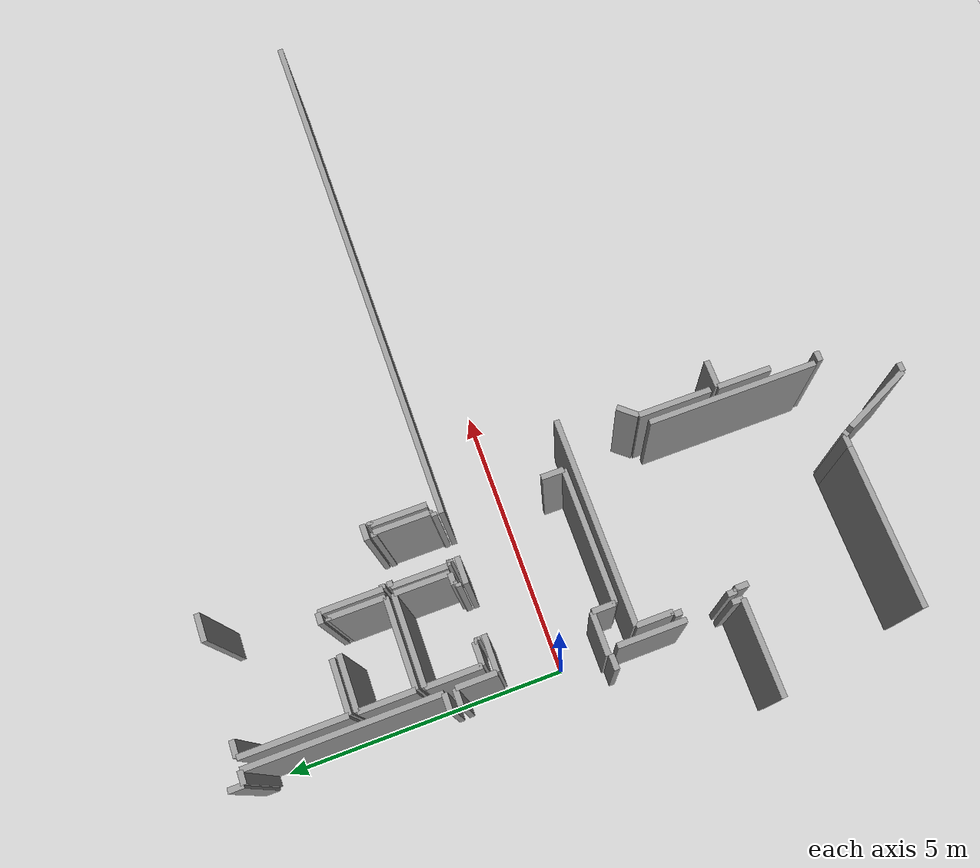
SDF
<sdf version="1.6">
 <world name="default">
  <model name="ground_plane">
   <static>1</static>
   <link name="link">
    <collision name="collision">
     <geometry><plane><normal>0 0 1</normal><size>100 100</size></plane></geometry>
     <surface><friction><ode><mu>100</mu><mu2>50</mu2></ode></friction></surface>
    </collision>
    <visual name="visual">
     <cast_shadows>0</cast_shadows>
     <geometry><plane><normal>0 0 1</normal><size>100 100</size></plane></geometry>
     <material>
      <script><uri>file://media/materials/scripts/gazebo.material</uri><name>Gazebo/Grey</name></script>
     </material>
    </visual>
   </link>
  </model>
  <model name="0510025537_Layout1_PLAN1">
   <static>1</static>
   <link name="Wall_192">
    <collision name="Wall_192_Collision">
     <geometry><box><size>0.258854927877 0.1 2.5</size></box></geometry>
     <pose>0.129427463938 0 1.25 0 0 0</pose>
    </collision>
    <visual name="Wall_192_Visual">
     <pose>0.129427463938 0 1.25 0 0 0</pose>
     <geometry><box><size>0.258854927877 0.1 2.5</size></box></geometry>
     <material>
      <script><uri>file://media/materials/scripts/gazebo.material</uri><name>Gazebo/Grey</name></script>
      <ambient>1 1 1 1</ambient>
     </material>
    </visual>
    <pose>20.1955900108 -0.0 0 0 0 -1.57079632679</pose>
   </link>
   <link name="Wall_193">
    <collision name="Wall_193_Collision">
     <geometry><box><size>0.231619749635 0.1 2.5</size></box></geometry>
     <pose>0.115809874817 0 1.25 0 0 0</pose>
    </collision>
    <visual name="Wall_193_Visual">
     <pose>0.115809874817 0 1.25 0 0 0</pose>
     <geometry><box><size>0.231619749635 0.1 2.5</size></box></geometry>
     <material>
      <script><uri>file://media/materials/scripts/gazebo.material</uri><name>Gazebo/Grey</name></script>
      <ambient>1 1 1 1</ambient>
     </material>
    </visual>
    <pose>20.1955900108 -0.258854927877 0 0 0 0.0</pose>
   </link>
   <link name="Wall_194">
    <collision name="Wall_194_Collision">
     <geometry><box><size>3.3144945034 0.1 2.5</size></box></geometry>
     <pose>1.6572472517 0 1.25 0 0 0</pose>
    </collision>
    <visual name="Wall_194_Visual">
     <pose>1.6572472517 0 1.25 0 0 0</pose>
     <geometry><box><size>3.3144945034 0.1 2.5</size></box></geometry>
     <material>
      <script><uri>file://media/materials/scripts/gazebo.material</uri><name>Gazebo/Grey</name></script>
      <ambient>1 1 1 1</ambient>
     </material>
    </visual>
    <pose>20.4272097604 -0.258854927877 0 0 0 -1.57079632679</pose>
   </link>
   <link name="Wall_195">
    <collision name="Wall_195_Collision">
     <geometry><box><size>0.285187774036 0.1 2.5</size></box></geometry>
     <pose>0.142593887018 0 1.25 0 0 0</pose>
    </collision>
    <visual name="Wall_195_Visual">
     <pose>0.142593887018 0 1.25 0 0 0</pose>
     <geometry><box><size>0.285187774036 0.1 2.5</size></box></geometry>
     <material>
      <script><uri>file://media/materials/scripts/gazebo.material</uri><name>Gazebo/Grey</name></script>
      <ambient>1 1 1 1</ambient>
     </material>
    </visual>
    <pose>20.4272097604 -3.57334943128 0 0 0 3.14159265359</pose>
   </link>
   <link name="Wall_202">
    <collision name="Wall_202_Collision">
     <geometry><box><size>1.19749634619 0.1 2.5</size></box></geometry>
     <pose>0.598748173095 0 1.25 0 0 0</pose>
    </collision>
    <visual name="Wall_202_Visual">
     <pose>0.598748173095 0 1.25 0 0 0</pose>
     <geometry><box><size>1.19749634619 0.1 2.5</size></box></geometry>
     <material>
      <script><uri>file://media/materials/scripts/gazebo.material</uri><name>Gazebo/Grey</name></script>
      <ambient>1 1 1 1</ambient>
     </material>
    </visual>
    <pose>20.157336214 -6.38023765648 0 0 0 -1.57079632679</pose>
   </link>
   <link name="Wall_203">
    <collision name="Wall_203_Collision">
     <geometry><box><size>0.195081654699 0.1 2.5</size></box></geometry>
     <pose>0.0975408273496 0 1.25 0 0 0</pose>
    </collision>
    <visual name="Wall_203_Visual">
     <pose>0.0975408273496 0 1.25 0 0 0</pose>
     <geometry><box><size>0.195081654699 0.1 2.5</size></box></geometry>
     <material>
      <script><uri>file://media/materials/scripts/gazebo.material</uri><name>Gazebo/Grey</name></script>
      <ambient>1 1 1 1</ambient>
     </material>
    </visual>
    <pose>20.157336214 -8.35621783059 0 0 0 -1.57079632679</pose>
   </link>
   <link name="Wall_204">
    <collision name="Wall_204_Collision">
     <geometry><box><size>1.66505853231 0.1 2.5</size></box></geometry>
     <pose>0.832529266155 0 1.25 0 0 0</pose>
    </collision>
    <visual name="Wall_204_Visual">
     <pose>0.832529266155 0 1.25 0 0 0</pose>
     <geometry><box><size>1.66505853231 0.1 2.5</size></box></geometry>
     <material>
      <script><uri>file://media/materials/scripts/gazebo.material</uri><name>Gazebo/Grey</name></script>
      <ambient>1 1 1 1</ambient>
     </material>
    </visual>
    <pose>20.157336214 -8.55129948529 0 0 0 3.14018060247</pose>
   </link>
   <link name="Wall_207">
    <collision name="Wall_207_Collision">
     <geometry><box><size>0.222659973311 0.1 2.5</size></box></geometry>
     <pose>0.111329986656 0 1.25 0 0 0</pose>
    </collision>
    <visual name="Wall_207_Visual">
     <pose>0.111329986656 0 1.25 0 0 0</pose>
     <geometry><box><size>0.222659973311 0.1 2.5</size></box></geometry>
     <material>
      <script><uri>file://media/materials/scripts/gazebo.material</uri><name>Gazebo/Grey</name></script>
      <ambient>1 1 1 1</ambient>
     </material>
    </visual>
    <pose>20.3473343077 -8.72121751287 0 0 0 1.57079632679</pose>
   </link>
   <link name="Wall_208">
    <collision name="Wall_208_Collision">
     <geometry><box><size>0.0439728029485 0.1 2.5</size></box></geometry>
     <pose>0.0219864014742 0 1.25 0 0 0</pose>
    </collision>
    <visual name="Wall_208_Visual">
     <pose>0.0219864014742 0 1.25 0 0 0</pose>
     <geometry><box><size>0.0439728029485 0.1 2.5</size></box></geometry>
     <material>
      <script><uri>file://media/materials/scripts/gazebo.material</uri><name>Gazebo/Grey</name></script>
      <ambient>1 1 1 1</ambient>
     </material>
    </visual>
    <pose>20.3473343077 -8.49855753956 0 0 0 3.14159265359</pose>
   </link>
   <link name="Wall_209">
    <collision name="Wall_209_Collision">
     <geometry><box><size>0.158607104277 0.1 2.5</size></box></geometry>
     <pose>0.0793035521383 0 1.25 0 0 0</pose>
    </collision>
    <visual name="Wall_209_Visual">
     <pose>0.0793035521383 0 1.25 0 0 0</pose>
     <geometry><box><size>0.158607104277 0.1 2.5</size></box></geometry>
     <material>
      <script><uri>file://media/materials/scripts/gazebo.material</uri><name>Gazebo/Grey</name></script>
      <ambient>1 1 1 1</ambient>
     </material>
    </visual>
    <pose>20.3033615047 -8.49855753956 0 0 0 1.57079632679</pose>
   </link>
   <link name="Wall_210">
    <collision name="Wall_210_Collision">
     <geometry><box><size>0.131092330177 0.1 2.5</size></box></geometry>
     <pose>0.0655461650886 0 1.25 0 0 0</pose>
    </collision>
    <visual name="Wall_210_Visual">
     <pose>0.0655461650886 0 1.25 0 0 0</pose>
     <geometry><box><size>0.131092330177 0.1 2.5</size></box></geometry>
     <material>
      <script><uri>file://media/materials/scripts/gazebo.material</uri><name>Gazebo/Grey</name></script>
      <ambient>1 1 1 1</ambient>
     </material>
    </visual>
    <pose>20.3033615047 -7.54901188282 0 0 0 1.57079632679</pose>
   </link>
   <link name="Wall_211">
    <collision name="Wall_211_Collision">
     <geometry><box><size>0.0479125627502 0.1 2.5</size></box></geometry>
     <pose>0.0239562813751 0 1.25 0 0 0</pose>
    </collision>
    <visual name="Wall_211_Visual">
     <pose>0.0239562813751 0 1.25 0 0 0</pose>
     <geometry><box><size>0.0479125627502 0.1 2.5</size></box></geometry>
     <material>
      <script><uri>file://media/materials/scripts/gazebo.material</uri><name>Gazebo/Grey</name></script>
      <ambient>1 1 1 1</ambient>
     </material>
    </visual>
    <pose>20.3033615047 -7.41791955265 0 0 0 0.0</pose>
   </link>
   <link name="Wall_212">
    <collision name="Wall_212_Collision">
     <geometry><box><size>0.638749443986 0.1 2.5</size></box></geometry>
     <pose>0.319374721993 0 1.25 0 0 0</pose>
    </collision>
    <visual name="Wall_212_Visual">
     <pose>0.319374721993 0 1.25 0 0 0</pose>
     <geometry><box><size>0.638749443986 0.1 2.5</size></box></geometry>
     <material>
      <script><uri>file://media/materials/scripts/gazebo.material</uri><name>Gazebo/Grey</name></script>
      <ambient>1 1 1 1</ambient>
     </material>
    </visual>
    <pose>20.3512740675 -7.41791955265 0 0 0 1.57079632679</pose>
   </link>
   <link name="Wall_213">
    <collision name="Wall_213_Collision">
     <geometry><box><size>3.66931435471 0.1 2.5</size></box></geometry>
     <pose>1.83465717735 0 1.25 0 0 0</pose>
    </collision>
    <visual name="Wall_213_Visual">
     <pose>1.83465717735 0 1.25 0 0 0</pose>
     <geometry><box><size>3.66931435471 0.1 2.5</size></box></geometry>
     <material>
      <script><uri>file://media/materials/scripts/gazebo.material</uri><name>Gazebo/Grey</name></script>
      <ambient>1 1 1 1</ambient>
     </material>
    </visual>
    <pose>20.3512740675 -6.77917010866 0 0 0 0.0</pose>
   </link>
   <link name="Wall_215">
    <collision name="Wall_215_Collision">
     <geometry><box><size>3.05522018174 0.1 2.5</size></box></geometry>
     <pose>1.52761009087 0 1.25 0 0 0</pose>
    </collision>
    <visual name="Wall_215_Visual">
     <pose>1.52761009087 0 1.25 0 0 0</pose>
     <geometry><box><size>3.05522018174 0.1 2.5</size></box></geometry>
     <material>
      <script><uri>file://media/materials/scripts/gazebo.material</uri><name>Gazebo/Grey</name></script>
      <ambient>1 1 1 1</ambient>
     </material>
    </visual>
    <pose>23.4401092966 -8.237834403 0 0 0 -1.57079632679</pose>
   </link>
   <link name="Wall_216">
    <collision name="Wall_216_Collision">
     <geometry><box><size>0.0823701861256 0.1 2.5</size></box></geometry>
     <pose>0.0411850930628 0 1.25 0 0 0</pose>
    </collision>
    <visual name="Wall_216_Visual">
     <pose>0.0411850930628 0 1.25 0 0 0</pose>
     <geometry><box><size>0.0823701861256 0.1 2.5</size></box></geometry>
     <material>
      <script><uri>file://media/materials/scripts/gazebo.material</uri><name>Gazebo/Grey</name></script>
      <ambient>1 1 1 1</ambient>
     </material>
    </visual>
    <pose>22.125373324 -11.2930545847 0 0 0 2.06687991512</pose>
   </link>
   <link name="Wall_217">
    <collision name="Wall_217_Collision">
     <geometry><box><size>0.219927559255 0.1 2.5</size></box></geometry>
     <pose>0.109963779628 0 1.25 0 0 0</pose>
    </collision>
    <visual name="Wall_217_Visual">
     <pose>0.109963779628 0 1.25 0 0 0</pose>
     <geometry><box><size>0.219927559255 0.1 2.5</size></box></geometry>
     <material>
      <script><uri>file://media/materials/scripts/gazebo.material</uri><name>Gazebo/Grey</name></script>
      <ambient>1 1 1 1</ambient>
     </material>
    </visual>
    <pose>22.0861663595 -11.22061384 0 0 0 3.14159265359</pose>
   </link>
   <link name="Wall_218">
    <collision name="Wall_218_Collision">
     <geometry><box><size>2.86853670749 0.1 2.5</size></box></geometry>
     <pose>1.43426835374 0 1.25 0 0 0</pose>
    </collision>
    <visual name="Wall_218_Visual">
     <pose>1.43426835374 0 1.25 0 0 0</pose>
     <geometry><box><size>2.86853670749 0.1 2.5</size></box></geometry>
     <material>
      <script><uri>file://media/materials/scripts/gazebo.material</uri><name>Gazebo/Grey</name></script>
      <ambient>1 1 1 1</ambient>
     </material>
    </visual>
    <pose>21.8662388003 -11.22061384 0 0 0 -3.13891222937</pose>
   </link>
   <link name="Wall_219">
    <collision name="Wall_219_Collision">
     <geometry><box><size>1.31174938044 0.1 2.5</size></box></geometry>
     <pose>0.655874690221 0 1.25 0 0 0</pose>
    </collision>
    <visual name="Wall_219_Visual">
     <pose>0.655874690221 0 1.25 0 0 0</pose>
     <geometry><box><size>1.31174938044 0.1 2.5</size></box></geometry>
     <material>
      <script><uri>file://media/materials/scripts/gazebo.material</uri><name>Gazebo/Grey</name></script>
      <ambient>1 1 1 1</ambient>
     </material>
    </visual>
    <pose>23.6207663468 -9.42840439728 0 0 0 1.57079632679</pose>
   </link>
   <link name="Wall_220">
    <collision name="Wall_220_Collision">
     <geometry><box><size>0.396966112124 0.1 2.5</size></box></geometry>
     <pose>0.198483056062 0 1.25 0 0 0</pose>
    </collision>
    <visual name="Wall_220_Visual">
     <pose>0.198483056062 0 1.25 0 0 0</pose>
     <geometry><box><size>0.396966112124 0.1 2.5</size></box></geometry>
     <material>
      <script><uri>file://media/materials/scripts/gazebo.material</uri><name>Gazebo/Grey</name></script>
      <ambient>1 1 1 1</ambient>
     </material>
    </visual>
    <pose>23.6207663468 -8.11665501684 0 0 0 0.861649176166</pose>
   </link>
   <link name="Wall_225">
    <collision name="Wall_225_Collision">
     <geometry><box><size>0.971214335642 0.1 2.5</size></box></geometry>
     <pose>0.485607167821 0 1.25 0 0 0</pose>
    </collision>
    <visual name="Wall_225_Visual">
     <pose>0.485607167821 0 1.25 0 0 0</pose>
     <geometry><box><size>0.971214335642 0.1 2.5</size></box></geometry>
     <material>
      <script><uri>file://media/materials/scripts/gazebo.material</uri><name>Gazebo/Grey</name></script>
      <ambient>1 1 1 1</ambient>
     </material>
    </visual>
    <pose>23.6214653365 -10.5307746076 0 0 0 1.57079632679</pose>
   </link>
   <link name="Wall_226">
    <collision name="Wall_226_Collision">
     <geometry><box><size>0.498188981381 0.1 2.5</size></box></geometry>
     <pose>0.249094490691 0 1.25 0 0 0</pose>
    </collision>
    <visual name="Wall_226_Visual">
     <pose>0.249094490691 0 1.25 0 0 0</pose>
     <geometry><box><size>0.498188981381 0.1 2.5</size></box></geometry>
     <material>
      <script><uri>file://media/materials/scripts/gazebo.material</uri><name>Gazebo/Grey</name></script>
      <ambient>1 1 1 1</ambient>
     </material>
    </visual>
    <pose>23.6214653365 -9.55956027197 0 0 0 0.0</pose>
   </link>
   <link name="Wall_236">
    <collision name="Wall_236_Collision">
     <geometry><box><size>0.162610408591 0.1 2.5</size></box></geometry>
     <pose>0.0813052042956 0 1.25 0 0 0</pose>
    </collision>
    <visual name="Wall_236_Visual">
     <pose>0.0813052042956 0 1.25 0 0 0</pose>
     <geometry><box><size>0.162610408591 0.1 2.5</size></box></geometry>
     <material>
      <script><uri>file://media/materials/scripts/gazebo.material</uri><name>Gazebo/Grey</name></script>
      <ambient>1 1 1 1</ambient>
     </material>
    </visual>
    <pose>22.9400139798 -12.6302853149 0 0 0 3.14159265359</pose>
   </link>
   <link name="Wall_237">
    <collision name="Wall_237_Collision">
     <geometry><box><size>1.37905040562 0.1 2.5</size></box></geometry>
     <pose>0.689525202809 0 1.25 0 0 0</pose>
    </collision>
    <visual name="Wall_237_Visual">
     <pose>0.689525202809 0 1.25 0 0 0</pose>
     <geometry><box><size>1.37905040562 0.1 2.5</size></box></geometry>
     <material>
      <script><uri>file://media/materials/scripts/gazebo.material</uri><name>Gazebo/Grey</name></script>
      <ambient>1 1 1 1</ambient>
     </material>
    </visual>
    <pose>22.7774035712 -12.6302853149 0 0 0 2.02096660747</pose>
   </link>
   <link name="Wall_238">
    <collision name="Wall_238_Collision">
     <geometry><box><size>0.184215542988 0.1 2.5</size></box></geometry>
     <pose>0.0921077714939 0 1.25 0 0 0</pose>
    </collision>
    <visual name="Wall_238_Visual">
     <pose>0.0921077714939 0 1.25 0 0 0</pose>
     <geometry><box><size>0.184215542988 0.1 2.5</size></box></geometry>
     <material>
      <script><uri>file://media/materials/scripts/gazebo.material</uri><name>Gazebo/Grey</name></script>
      <ambient>1 1 1 1</ambient>
     </material>
    </visual>
    <pose>23.4403634746 -11.3886255322 0 0 0 0.0</pose>
   </link>
   <link name="Wall_332">
    <collision name="Wall_332_Collision">
     <geometry><box><size>0.973629027134 0.1 2.5</size></box></geometry>
     <pose>0.486814513567 0 1.25 0 0 0</pose>
    </collision>
    <visual name="Wall_332_Visual">
     <pose>0.486814513567 0 1.25 0 0 0</pose>
     <geometry><box><size>0.973629027134 0.1 2.5</size></box></geometry>
     <material>
      <script><uri>file://media/materials/scripts/gazebo.material</uri><name>Gazebo/Grey</name></script>
      <ambient>1 1 1 1</ambient>
     </material>
    </visual>
    <pose>23.4012200546 -4.27443604245 0 0 0 1.57079632679</pose>
   </link>
   <link name="Wall_333">
    <collision name="Wall_333_Collision">
     <geometry><box><size>0.0556649933278 0.1 2.5</size></box></geometry>
     <pose>0.0278324966639 0 1.25 0 0 0</pose>
    </collision>
    <visual name="Wall_333_Visual">
     <pose>0.0278324966639 0 1.25 0 0 0</pose>
     <geometry><box><size>0.0556649933278 0.1 2.5</size></box></geometry>
     <material>
      <script><uri>file://media/materials/scripts/gazebo.material</uri><name>Gazebo/Grey</name></script>
      <ambient>1 1 1 1</ambient>
     </material>
    </visual>
    <pose>23.4012200546 -3.30080701531 0 0 0 0.0</pose>
   </link>
   <link name="Wall_337">
    <collision name="Wall_337_Collision">
     <geometry><box><size>0.966702675224 0.1 2.5</size></box></geometry>
     <pose>0.483351337612 0 1.25 0 0 0</pose>
    </collision>
    <visual name="Wall_337_Visual">
     <pose>0.483351337612 0 1.25 0 0 0</pose>
     <geometry><box><size>0.966702675224 0.1 2.5</size></box></geometry>
     <material>
      <script><uri>file://media/materials/scripts/gazebo.material</uri><name>Gazebo/Grey</name></script>
      <ambient>1 1 1 1</ambient>
     </material>
    </visual>
    <pose>22.3156255957 -4.26954311495 0 0 0 1.57079632679</pose>
   </link>
   <link name="Wall_338">
    <collision name="Wall_338_Collision">
     <geometry><box><size>0.0949990468323 0.1 2.5</size></box></geometry>
     <pose>0.0474995234162 0 1.25 0 0 0</pose>
    </collision>
    <visual name="Wall_338_Visual">
     <pose>0.0474995234162 0 1.25 0 0 0</pose>
     <geometry><box><size>0.0949990468323 0.1 2.5</size></box></geometry>
     <material>
      <script><uri>file://media/materials/scripts/gazebo.material</uri><name>Gazebo/Grey</name></script>
      <ambient>1 1 1 1</ambient>
     </material>
    </visual>
    <pose>22.3156255957 -3.30284043973 0 0 0 0.0</pose>
   </link>
   <link name="Wall_339">
    <collision name="Wall_339_Collision">
     <geometry><box><size>0.0751731587977 0.1 2.5</size></box></geometry>
     <pose>0.0375865793989 0 1.25 0 0 0</pose>
    </collision>
    <visual name="Wall_339_Visual">
     <pose>0.0375865793989 0 1.25 0 0 0</pose>
     <geometry><box><size>0.0751731587977 0.1 2.5</size></box></geometry>
     <material>
      <script><uri>file://media/materials/scripts/gazebo.material</uri><name>Gazebo/Grey</name></script>
      <ambient>1 1 1 1</ambient>
     </material>
    </visual>
    <pose>23.1853593442 -3.30284043973 0 0 0 0.0</pose>
   </link>
   <link name="Wall_340">
    <collision name="Wall_340_Collision">
     <geometry><box><size>0.971277880155 0.1 2.5</size></box></geometry>
     <pose>0.485638940078 0 1.25 0 0 0</pose>
    </collision>
    <visual name="Wall_340_Visual">
     <pose>0.485638940078 0 1.25 0 0 0</pose>
     <geometry><box><size>0.971277880155 0.1 2.5</size></box></geometry>
     <material>
      <script><uri>file://media/materials/scripts/gazebo.material</uri><name>Gazebo/Grey</name></script>
      <ambient>1 1 1 1</ambient>
     </material>
    </visual>
    <pose>23.260532503 -3.30284043973 0 0 0 -1.57079632679</pose>
   </link>
   <link name="Wall_341">
    <collision name="Wall_341_Collision">
     <geometry><box><size>0.0230031136811 0.1 2.5</size></box></geometry>
     <pose>0.0115015568406 0 1.25 0 0 0</pose>
    </collision>
    <visual name="Wall_341_Visual">
     <pose>0.0115015568406 0 1.25 0 0 0</pose>
     <geometry><box><size>0.0230031136811 0.1 2.5</size></box></geometry>
     <material>
      <script><uri>file://media/materials/scripts/gazebo.material</uri><name>Gazebo/Grey</name></script>
      <ambient>1 1 1 1</ambient>
     </material>
    </visual>
    <pose>23.260532503 -4.27411831988 0 0 0 3.14159265359</pose>
   </link>
   <link name="Wall_342">
    <collision name="Wall_342_Collision">
     <geometry><box><size>0.0597318421554 0.1 2.5</size></box></geometry>
     <pose>0.0298659210777 0 1.25 0 0 0</pose>
    </collision>
    <visual name="Wall_342_Visual">
     <pose>0.0298659210777 0 1.25 0 0 0</pose>
     <geometry><box><size>0.0597318421554 0.1 2.5</size></box></geometry>
     <material>
      <script><uri>file://media/materials/scripts/gazebo.material</uri><name>Gazebo/Grey</name></script>
      <ambient>1 1 1 1</ambient>
     </material>
    </visual>
    <pose>23.2375293893 -4.27411831988 0 0 0 -1.57079632679</pose>
   </link>
   <link name="Wall_343">
    <collision name="Wall_343_Collision">
     <geometry><box><size>0.0621465336468 0.1 2.5</size></box></geometry>
     <pose>0.0310732668234 0 1.25 0 0 0</pose>
    </collision>
    <visual name="Wall_343_Visual">
     <pose>0.0310732668234 0 1.25 0 0 0</pose>
     <geometry><box><size>0.0621465336468 0.1 2.5</size></box></geometry>
     <material>
      <script><uri>file://media/materials/scripts/gazebo.material</uri><name>Gazebo/Grey</name></script>
      <ambient>1 1 1 1</ambient>
     </material>
    </visual>
    <pose>23.2375293893 -4.33385016204 0 0 0 3.14159265359</pose>
   </link>
   <link name="Wall_344">
    <collision name="Wall_344_Collision">
     <geometry><box><size>0.043464446845 0.1 2.5</size></box></geometry>
     <pose>0.0217322234225 0 1.25 0 0 0</pose>
    </collision>
    <visual name="Wall_344_Visual">
     <pose>0.0217322234225 0 1.25 0 0 0</pose>
     <geometry><box><size>0.043464446845 0.1 2.5</size></box></geometry>
     <material>
      <script><uri>file://media/materials/scripts/gazebo.material</uri><name>Gazebo/Grey</name></script>
      <ambient>1 1 1 1</ambient>
     </material>
    </visual>
    <pose>22.4036347461 -4.33385016204 0 0 0 3.14159265359</pose>
   </link>
   <link name="Wall_345">
    <collision name="Wall_345_Collision">
     <geometry><box><size>0.0623371671856 0.1 2.5</size></box></geometry>
     <pose>0.0311685835928 0 1.25 0 0 0</pose>
    </collision>
    <visual name="Wall_345_Visual">
     <pose>0.0311685835928 0 1.25 0 0 0</pose>
     <geometry><box><size>0.0623371671856 0.1 2.5</size></box></geometry>
     <material>
      <script><uri>file://media/materials/scripts/gazebo.material</uri><name>Gazebo/Grey</name></script>
      <ambient>1 1 1 1</ambient>
     </material>
    </visual>
    <pose>22.3601702993 -4.33385016204 0 0 0 1.57079632679</pose>
   </link>
   <link name="Wall_346">
    <collision name="Wall_346_Collision">
     <geometry><box><size>0.0445882388361 0.1 2.5</size></box></geometry>
     <pose>0.022294119418 0 1.25 0 0 0</pose>
    </collision>
    <visual name="Wall_346_Visual">
     <pose>0.022294119418 0 1.25 0 0 0</pose>
     <geometry><box><size>0.0445882388361 0.1 2.5</size></box></geometry>
     <material>
      <script><uri>file://media/materials/scripts/gazebo.material</uri><name>Gazebo/Grey</name></script>
      <ambient>1 1 1 1</ambient>
     </material>
    </visual>
    <pose>22.3601702993 -4.27151299485 0 0 0 3.09739890827</pose>
   </link>
   <link name="Wall_347">
    <collision name="Wall_347_Collision">
     <geometry><box><size>1.81739213319 0.1 2.5</size></box></geometry>
     <pose>0.908696066595 0 1.25 0 0 0</pose>
    </collision>
    <visual name="Wall_347_Visual">
     <pose>0.908696066595 0 1.25 0 0 0</pose>
     <geometry><box><size>1.81739213319 0.1 2.5</size></box></geometry>
     <material>
      <script><uri>file://media/materials/scripts/gazebo.material</uri><name>Gazebo/Grey</name></script>
      <ambient>1 1 1 1</ambient>
     </material>
    </visual>
    <pose>20.6239435725 -2.07592298405 0 0 0 1.57079632679</pose>
   </link>
   <link name="Wall_348">
    <collision name="Wall_348_Collision">
     <geometry><box><size>0.284171061829 0.1 2.5</size></box></geometry>
     <pose>0.142085530914 0 1.25 0 0 0</pose>
    </collision>
    <visual name="Wall_348_Visual">
     <pose>0.142085530914 0 1.25 0 0 0</pose>
     <geometry><box><size>0.284171061829 0.1 2.5</size></box></geometry>
     <material>
      <script><uri>file://media/materials/scripts/gazebo.material</uri><name>Gazebo/Grey</name></script>
      <ambient>1 1 1 1</ambient>
     </material>
    </visual>
    <pose>20.6239435725 -0.258530850861 0 0 0 0.0</pose>
   </link>
   <link name="Wall_349">
    <collision name="Wall_349_Collision">
     <geometry><box><size>0.477791192731 0.1 2.5</size></box></geometry>
     <pose>0.238895596365 0 1.25 0 0 0</pose>
    </collision>
    <visual name="Wall_349_Visual">
     <pose>0.238895596365 0 1.25 0 0 0</pose>
     <geometry><box><size>0.477791192731 0.1 2.5</size></box></geometry>
     <material>
      <script><uri>file://media/materials/scripts/gazebo.material</uri><name>Gazebo/Grey</name></script>
      <ambient>1 1 1 1</ambient>
     </material>
    </visual>
    <pose>22.5138844761 -0.258530850861 0 0 0 0.0</pose>
   </link>
   <link name="Wall_354">
    <collision name="Wall_354_Collision">
     <geometry><box><size>0.273304950118 0.1 2.5</size></box></geometry>
     <pose>0.136652475059 0 1.25 0 0 0</pose>
    </collision>
    <visual name="Wall_354_Visual">
     <pose>0.136652475059 0 1.25 0 0 0</pose>
     <geometry><box><size>0.273304950118 0.1 2.5</size></box></geometry>
     <material>
      <script><uri>file://media/materials/scripts/gazebo.material</uri><name>Gazebo/Grey</name></script>
      <ambient>1 1 1 1</ambient>
     </material>
    </visual>
    <pose>23.4526911101 -3.1759420474 0 0 0 3.14159265359</pose>
   </link>
   <link name="Wall_355">
    <collision name="Wall_355_Collision">
     <geometry><box><size>0.0768888606469 0.1 2.5</size></box></geometry>
     <pose>0.0384444303234 0 1.25 0 0 0</pose>
    </collision>
    <visual name="Wall_355_Visual">
     <pose>0.0384444303234 0 1.25 0 0 0</pose>
     <geometry><box><size>0.0768888606469 0.1 2.5</size></box></geometry>
     <material>
      <script><uri>file://media/materials/scripts/gazebo.material</uri><name>Gazebo/Grey</name></script>
      <ambient>1 1 1 1</ambient>
     </material>
    </visual>
    <pose>22.4017284108 -3.1759420474 0 0 0 3.14159265359</pose>
   </link>
   <link name="Wall_356">
    <collision name="Wall_356_Collision">
     <geometry><box><size>1.09692444557 0.1 2.5</size></box></geometry>
     <pose>0.548462222787 0 1.25 0 0 0</pose>
    </collision>
    <visual name="Wall_356_Visual">
     <pose>0.548462222787 0 1.25 0 0 0</pose>
     <geometry><box><size>1.09692444557 0.1 2.5</size></box></geometry>
     <material>
      <script><uri>file://media/materials/scripts/gazebo.material</uri><name>Gazebo/Grey</name></script>
      <ambient>1 1 1 1</ambient>
     </material>
    </visual>
    <pose>22.3248395501 -3.1759420474 0 0 0 1.57079632679</pose>
   </link>
   <link name="Wall_357">
    <collision name="Wall_357_Collision">
     <geometry><box><size>0.193111774798 0.1 2.5</size></box></geometry>
     <pose>0.0965558873991 0 1.25 0 0 0</pose>
    </collision>
    <visual name="Wall_357_Visual">
     <pose>0.0965558873991 0 1.25 0 0 0</pose>
     <geometry><box><size>0.193111774798 0.1 2.5</size></box></geometry>
     <material>
      <script><uri>file://media/materials/scripts/gazebo.material</uri><name>Gazebo/Grey</name></script>
      <ambient>1 1 1 1</ambient>
     </material>
    </visual>
    <pose>22.3248395501 -2.07901760183 0 0 0 3.14159265359</pose>
   </link>
   <link name="Wall_358">
    <collision name="Wall_358_Collision">
     <geometry><box><size>0.926992520102 0.1 2.5</size></box></geometry>
     <pose>0.463496260051 0 1.25 0 0 0</pose>
    </collision>
    <visual name="Wall_358_Visual">
     <pose>0.463496260051 0 1.25 0 0 0</pose>
     <geometry><box><size>0.926992520102 0.1 2.5</size></box></geometry>
     <material>
      <script><uri>file://media/materials/scripts/gazebo.material</uri><name>Gazebo/Grey</name></script>
      <ambient>1 1 1 1</ambient>
     </material>
    </visual>
    <pose>21.5509309271 -2.07901760183 0 0 0 3.1382543057</pose>
   </link>
   <link name="Wall_359">
    <collision name="Wall_359_Collision">
     <geometry><box><size>0.969530406049 0.1 2.5</size></box></geometry>
     <pose>0.484765203025 0 1.25 0 0 0</pose>
    </collision>
    <visual name="Wall_359_Visual">
     <pose>0.484765203025 0 1.25 0 0 0</pose>
     <geometry><box><size>0.969530406049 0.1 2.5</size></box></geometry>
     <material>
      <script><uri>file://media/materials/scripts/gazebo.material</uri><name>Gazebo/Grey</name></script>
      <ambient>1 1 1 1</ambient>
     </material>
    </visual>
    <pose>20.6254050963 -3.17537014679 0 0 0 1.57079632679</pose>
   </link>
   <link name="Wall_360">
    <collision name="Wall_360_Collision">
     <geometry><box><size>0.952659337866 0.1 2.5</size></box></geometry>
     <pose>0.476329668933 0 1.25 0 0 0</pose>
    </collision>
    <visual name="Wall_360_Visual">
     <pose>0.476329668933 0 1.25 0 0 0</pose>
     <geometry><box><size>0.952659337866 0.1 2.5</size></box></geometry>
     <material>
      <script><uri>file://media/materials/scripts/gazebo.material</uri><name>Gazebo/Grey</name></script>
      <ambient>1 1 1 1</ambient>
     </material>
    </visual>
    <pose>20.6254050963 -2.20583974074 0 0 0 0.0</pose>
   </link>
   <link name="Wall_361">
    <collision name="Wall_361_Collision">
     <geometry><box><size>0.0454343267459 0.1 2.5</size></box></geometry>
     <pose>0.0227171633729 0 1.25 0 0 0</pose>
    </collision>
    <visual name="Wall_361_Visual">
     <pose>0.0227171633729 0 1.25 0 0 0</pose>
     <geometry><box><size>0.0454343267459 0.1 2.5</size></box></geometry>
     <material>
      <script><uri>file://media/materials/scripts/gazebo.material</uri><name>Gazebo/Grey</name></script>
      <ambient>1 1 1 1</ambient>
     </material>
    </visual>
    <pose>22.1400521065 -2.20583974074 0 0 0 0.0</pose>
   </link>
   <link name="Wall_362">
    <collision name="Wall_362_Collision">
     <geometry><box><size>0.969022049946 0.1 2.5</size></box></geometry>
     <pose>0.484511024973 0 1.25 0 0 0</pose>
    </collision>
    <visual name="Wall_362_Visual">
     <pose>0.484511024973 0 1.25 0 0 0</pose>
     <geometry><box><size>0.969022049946 0.1 2.5</size></box></geometry>
     <material>
      <script><uri>file://media/materials/scripts/gazebo.material</uri><name>Gazebo/Grey</name></script>
      <ambient>1 1 1 1</ambient>
     </material>
    </visual>
    <pose>22.1854864332 -2.20583974074 0 0 0 -1.57079632679</pose>
   </link>
   <link name="Wall_363">
    <collision name="Wall_363_Collision">
     <geometry><box><size>1.5600814198 0.1 2.5</size></box></geometry>
     <pose>0.780040709901 0 1.25 0 0 0</pose>
    </collision>
    <visual name="Wall_363_Visual">
     <pose>0.780040709901 0 1.25 0 0 0</pose>
     <geometry><box><size>1.5600814198 0.1 2.5</size></box></geometry>
     <material>
      <script><uri>file://media/materials/scripts/gazebo.material</uri><name>Gazebo/Grey</name></script>
      <ambient>1 1 1 1</ambient>
     </material>
    </visual>
    <pose>22.1854864332 -3.17486179068 0 0 0 -3.14126680129</pose>
   </link>
   <link name="Wall_381">
    <collision name="Wall_381_Collision">
     <geometry><box><size>0.966384952659 0.1 2.5</size></box></geometry>
     <pose>0.48319247633 0 1.25 0 0 0</pose>
    </collision>
    <visual name="Wall_381_Visual">
     <pose>0.48319247633 0 1.25 0 0 0</pose>
     <geometry><box><size>0.966384952659 0.1 2.5</size></box></geometry>
     <material>
      <script><uri>file://media/materials/scripts/gazebo.material</uri><name>Gazebo/Grey</name></script>
      <ambient>1 1 1 1</ambient>
     </material>
    </visual>
    <pose>20.6170807651 -4.27780390163 0 0 0 1.57079632679</pose>
   </link>
   <link name="Wall_382">
    <collision name="Wall_382_Collision">
     <geometry><box><size>1.57431530787 0.1 2.5</size></box></geometry>
     <pose>0.787157653937 0 1.25 0 0 0</pose>
    </collision>
    <visual name="Wall_382_Visual">
     <pose>0.787157653937 0 1.25 0 0 0</pose>
     <geometry><box><size>1.57431530787 0.1 2.5</size></box></geometry>
     <material>
      <script><uri>file://media/materials/scripts/gazebo.material</uri><name>Gazebo/Grey</name></script>
      <ambient>1 1 1 1</ambient>
     </material>
    </visual>
    <pose>20.6170807651 -3.31141894897 0 0 0 0.0</pose>
   </link>
   <link name="Wall_383">
    <collision name="Wall_383_Collision">
     <geometry><box><size>0.959140878185 0.1 2.5</size></box></geometry>
     <pose>0.479570439093 0 1.25 0 0 0</pose>
    </collision>
    <visual name="Wall_383_Visual">
     <pose>0.479570439093 0 1.25 0 0 0</pose>
     <geometry><box><size>0.959140878185 0.1 2.5</size></box></geometry>
     <material>
      <script><uri>file://media/materials/scripts/gazebo.material</uri><name>Gazebo/Grey</name></script>
      <ambient>1 1 1 1</ambient>
     </material>
    </visual>
    <pose>22.1913960729 -3.31141894897 0 0 0 -1.57079632679</pose>
   </link>
   <link name="Wall_384">
    <collision name="Wall_384_Collision">
     <geometry><box><size>0.197941157781 0.1 2.5</size></box></geometry>
     <pose>0.0989705788905 0 1.25 0 0 0</pose>
    </collision>
    <visual name="Wall_384_Visual">
     <pose>0.0989705788905 0 1.25 0 0 0</pose>
     <geometry><box><size>0.197941157781 0.1 2.5</size></box></geometry>
     <material>
      <script><uri>file://media/materials/scripts/gazebo.material</uri><name>Gazebo/Grey</name></script>
      <ambient>1 1 1 1</ambient>
     </material>
    </visual>
    <pose>22.1913960729 -4.27055982716 0 0 0 3.14159265359</pose>
   </link>
   <link name="Wall_385">
    <collision name="Wall_385_Collision">
     <geometry><box><size>0.0650695812417 0.1 2.5</size></box></geometry>
     <pose>0.0325347906208 0 1.25 0 0 0</pose>
    </collision>
    <visual name="Wall_385_Visual">
     <pose>0.0325347906208 0 1.25 0 0 0</pose>
     <geometry><box><size>0.0650695812417 0.1 2.5</size></box></geometry>
     <material>
      <script><uri>file://media/materials/scripts/gazebo.material</uri><name>Gazebo/Grey</name></script>
      <ambient>1 1 1 1</ambient>
     </material>
    </visual>
    <pose>21.9934549152 -4.27055982716 0 0 0 -1.57079632679</pose>
   </link>
   <link name="Wall_386">
    <collision name="Wall_386_Collision">
     <geometry><box><size>0.0596047531296 0.1 2.5</size></box></geometry>
     <pose>0.0298023765648 0 1.25 0 0 0</pose>
    </collision>
    <visual name="Wall_386_Visual">
     <pose>0.0298023765648 0 1.25 0 0 0</pose>
     <geometry><box><size>0.0596047531296 0.1 2.5</size></box></geometry>
     <material>
      <script><uri>file://media/materials/scripts/gazebo.material</uri><name>Gazebo/Grey</name></script>
      <ambient>1 1 1 1</ambient>
     </material>
    </visual>
    <pose>21.9934549152 -4.3356294084 0 0 0 3.14159265359</pose>
   </link>
   <link name="Wall_387">
    <collision name="Wall_387_Collision">
     <geometry><box><size>0.0542034695304 0.1 2.5</size></box></geometry>
     <pose>0.0271017347652 0 1.25 0 0 0</pose>
    </collision>
    <visual name="Wall_387_Visual">
     <pose>0.0271017347652 0 1.25 0 0 0</pose>
     <geometry><box><size>0.0542034695304 0.1 2.5</size></box></geometry>
     <material>
      <script><uri>file://media/materials/scripts/gazebo.material</uri><name>Gazebo/Grey</name></script>
      <ambient>1 1 1 1</ambient>
     </material>
    </visual>
    <pose>21.0685645295 -4.3356294084 0 0 0 3.14159265359</pose>
   </link>
   <link name="Wall_388">
    <collision name="Wall_388_Collision">
     <geometry><box><size>0.0588422189744 0.1 2.5</size></box></geometry>
     <pose>0.0294211094872 0 1.25 0 0 0</pose>
    </collision>
    <visual name="Wall_388_Visual">
     <pose>0.0294211094872 0 1.25 0 0 0</pose>
     <geometry><box><size>0.0588422189744 0.1 2.5</size></box></geometry>
     <material>
      <script><uri>file://media/materials/scripts/gazebo.material</uri><name>Gazebo/Grey</name></script>
      <ambient>1 1 1 1</ambient>
     </material>
    </visual>
    <pose>21.0143610599 -4.3356294084 0 0 0 1.57079632679</pose>
   </link>
   <link name="Wall_389">
    <collision name="Wall_389_Collision">
     <geometry><box><size>0.39728159582 0.1 2.5</size></box></geometry>
     <pose>0.19864079791 0 1.25 0 0 0</pose>
    </collision>
    <visual name="Wall_389_Visual">
     <pose>0.19864079791 0 1.25 0 0 0</pose>
     <geometry><box><size>0.39728159582 0.1 2.5</size></box></geometry>
     <material>
      <script><uri>file://media/materials/scripts/gazebo.material</uri><name>Gazebo/Grey</name></script>
      <ambient>1 1 1 1</ambient>
     </material>
    </visual>
    <pose>21.0143610599 -4.27678718943 0 0 0 -3.13903347811</pose>
   </link>
   <link name="Wall_391">
    <collision name="Wall_391_Collision">
     <geometry><box><size>0.282709538031 0.1 2.5</size></box></geometry>
     <pose>0.141354769016 0 1.25 0 0 0</pose>
    </collision>
    <visual name="Wall_391_Visual">
     <pose>0.141354769016 0 1.25 0 0 0</pose>
     <geometry><box><size>0.282709538031 0.1 2.5</size></box></geometry>
     <material>
      <script><uri>file://media/materials/scripts/gazebo.material</uri><name>Gazebo/Grey</name></script>
      <ambient>1 1 1 1</ambient>
     </material>
    </visual>
    <pose>20.1546038 -3.75813687488 0 0 0 0.0</pose>
   </link>
   <link name="Wall_392">
    <collision name="Wall_392_Collision">
     <geometry><box><size>0.700324077016 0.1 2.5</size></box></geometry>
     <pose>0.350162038508 0 1.25 0 0 0</pose>
    </collision>
    <visual name="Wall_392_Visual">
     <pose>0.350162038508 0 1.25 0 0 0</pose>
     <geometry><box><size>0.700324077016 0.1 2.5</size></box></geometry>
     <material>
      <script><uri>file://media/materials/scripts/gazebo.material</uri><name>Gazebo/Grey</name></script>
      <ambient>1 1 1 1</ambient>
     </material>
    </visual>
    <pose>20.437313338 -3.75813687488 0 0 0 -1.57079632679</pose>
   </link>
   <link name="Wall_393">
    <collision name="Wall_393_Collision">
     <geometry><box><size>0.63493677321 0.1 2.5</size></box></geometry>
     <pose>0.317468386605 0 1.25 0 0 0</pose>
    </collision>
    <visual name="Wall_393_Visual">
     <pose>0.317468386605 0 1.25 0 0 0</pose>
     <geometry><box><size>0.63493677321 0.1 2.5</size></box></geometry>
     <material>
      <script><uri>file://media/materials/scripts/gazebo.material</uri><name>Gazebo/Grey</name></script>
      <ambient>1 1 1 1</ambient>
     </material>
    </visual>
    <pose>20.437313338 -4.4584609519 0 0 0 0.0</pose>
   </link>
   <link name="Wall_394">
    <collision name="Wall_394_Collision">
     <geometry><box><size>0.470610662769 0.1 2.5</size></box></geometry>
     <pose>0.235305331385 0 1.25 0 0 0</pose>
    </collision>
    <visual name="Wall_394_Visual">
     <pose>0.235305331385 0 1.25 0 0 0</pose>
     <geometry><box><size>0.470610662769 0.1 2.5</size></box></geometry>
     <material>
      <script><uri>file://media/materials/scripts/gazebo.material</uri><name>Gazebo/Grey</name></script>
      <ambient>1 1 1 1</ambient>
     </material>
    </visual>
    <pose>21.9379805554 -4.4584609519 0 0 0 0.0</pose>
   </link>
   <link name="Wall_395">
    <collision name="Wall_395_Collision">
     <geometry><box><size>9.47690156955 0.1 2.5</size></box></geometry>
     <pose>4.73845078477 0 1.25 0 0 0</pose>
    </collision>
    <visual name="Wall_395_Visual">
     <pose>4.73845078477 0 1.25 0 0 0</pose>
     <geometry><box><size>9.47690156955 0.1 2.5</size></box></geometry>
     <material>
      <script><uri>file://media/materials/scripts/gazebo.material</uri><name>Gazebo/Grey</name></script>
      <ambient>1 1 1 1</ambient>
     </material>
    </visual>
    <pose>23.181864396 -4.4584609519 0 0 0 0.0</pose>
   </link>
   <link name="Wall_402">
    <collision name="Wall_402_Collision">
     <geometry><box><size>0.402872211984 0.1 2.5</size></box></geometry>
     <pose>0.201436105992 0 1.25 0 0 0</pose>
    </collision>
    <visual name="Wall_402_Visual">
     <pose>0.201436105992 0 1.25 0 0 0</pose>
     <geometry><box><size>0.402872211984 0.1 2.5</size></box></geometry>
     <material>
      <script><uri>file://media/materials/scripts/gazebo.material</uri><name>Gazebo/Grey</name></script>
      <ambient>1 1 1 1</ambient>
     </material>
    </visual>
    <pose>23.1738577874 -6.19850034949 0 0 0 -1.57079632679</pose>
   </link>
   <link name="Wall_403">
    <collision name="Wall_403_Collision">
     <geometry><box><size>2.36932070916 0.1 2.5</size></box></geometry>
     <pose>1.18466035458 0 1.25 0 0 0</pose>
    </collision>
    <visual name="Wall_403_Visual">
     <pose>1.18466035458 0 1.25 0 0 0</pose>
     <geometry><box><size>2.36932070916 0.1 2.5</size></box></geometry>
     <material>
      <script><uri>file://media/materials/scripts/gazebo.material</uri><name>Gazebo/Grey</name></script>
      <ambient>1 1 1 1</ambient>
     </material>
    </visual>
    <pose>23.1738577874 -6.60137256148 0 0 0 3.14159265359</pose>
   </link>
   <link name="Wall_404">
    <collision name="Wall_404_Collision">
     <geometry><box><size>0.401919044291 0.1 2.5</size></box></geometry>
     <pose>0.200959522145 0 1.25 0 0 0</pose>
    </collision>
    <visual name="Wall_404_Visual">
     <pose>0.200959522145 0 1.25 0 0 0</pose>
     <geometry><box><size>0.401919044291 0.1 2.5</size></box></geometry>
     <material>
      <script><uri>file://media/materials/scripts/gazebo.material</uri><name>Gazebo/Grey</name></script>
      <ambient>1 1 1 1</ambient>
     </material>
    </visual>
    <pose>20.8045370782 -6.60137256148 0 0 0 1.57079632679</pose>
   </link>
   <link name="Wall_405">
    <collision name="Wall_405_Collision">
     <geometry><box><size>0.736036093283 0.1 2.5</size></box></geometry>
     <pose>0.368018046642 0 1.25 0 0 0</pose>
    </collision>
    <visual name="Wall_405_Visual">
     <pose>0.368018046642 0 1.25 0 0 0</pose>
     <geometry><box><size>0.736036093283 0.1 2.5</size></box></geometry>
     <material>
      <script><uri>file://media/materials/scripts/gazebo.material</uri><name>Gazebo/Grey</name></script>
      <ambient>1 1 1 1</ambient>
     </material>
    </visual>
    <pose>20.8045370782 -6.19945351719 0 0 0 3.14159265359</pose>
   </link>
   <link name="Wall_407">
    <collision name="Wall_407_Collision">
     <geometry><box><size>0.258117811527 0.1 2.5</size></box></geometry>
     <pose>0.129058905763 0 1.25 0 0 0</pose>
    </collision>
    <visual name="Wall_407_Visual">
     <pose>0.129058905763 0 1.25 0 0 0</pose>
     <geometry><box><size>0.258117811527 0.1 2.5</size></box></geometry>
     <material>
      <script><uri>file://media/materials/scripts/gazebo.material</uri><name>Gazebo/Grey</name></script>
      <ambient>1 1 1 1</ambient>
     </material>
    </visual>
    <pose>20.0685009849 -6.24603164517 0 0 0 3.14159265359</pose>
   </link>
   <pose>-20.35 5.48517824236 0 0 0 0</pose>
  </model>
 </world>
</sdf>
